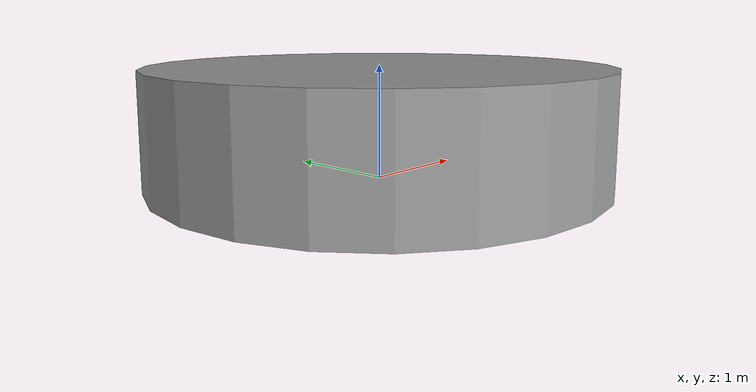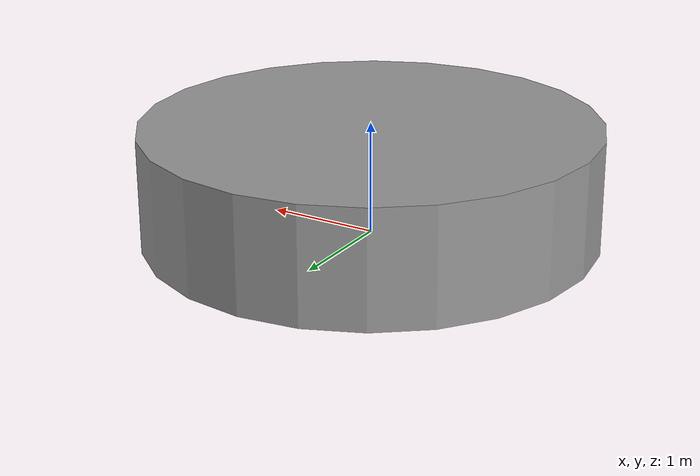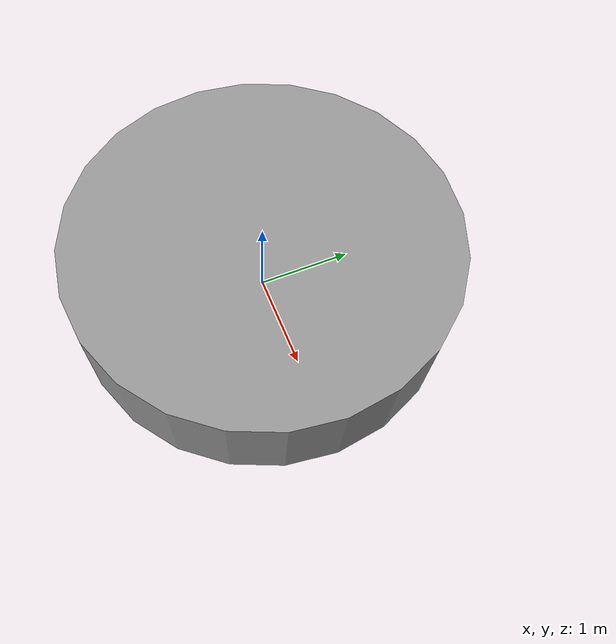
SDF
<?xml version="1.0" ?>
<sdf version="1.5">
  <model name="grey_wall">
    <static>true</static>
    <link name="link">
      <pose>0 0 0.5 0 0 0</pose>
      <collision name="collision">
        <geometry>
          <cylinder>
            <radius>2</radius>
            <length>1</length>
          </cylinder>
        </geometry>
      </collision>
      <visual name="visual">
        <cast_shadows>false</cast_shadows>
        <geometry>
         <cylinder>
	    <radius>2</radius>
            <length>1</length>
	  </cylinder>
        </geometry>
        <material>
          <script>
            <uri>model://w4/materials/scripts</uri>
            <uri>model://w4/materials/textures</uri>
            <name>vrc/grey_wall</name>
          </script>
        </material>
      </visual>
    </link>
  </model>
</sdf>
